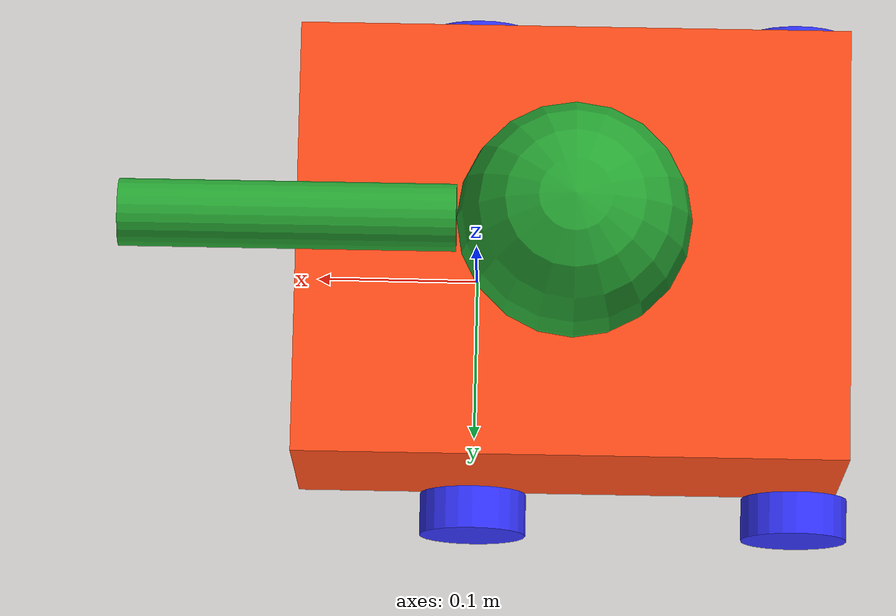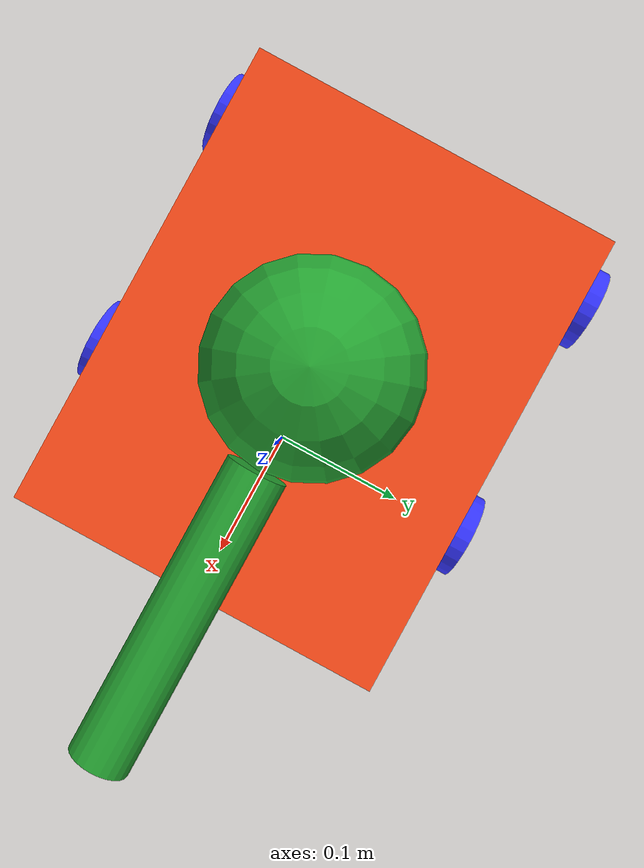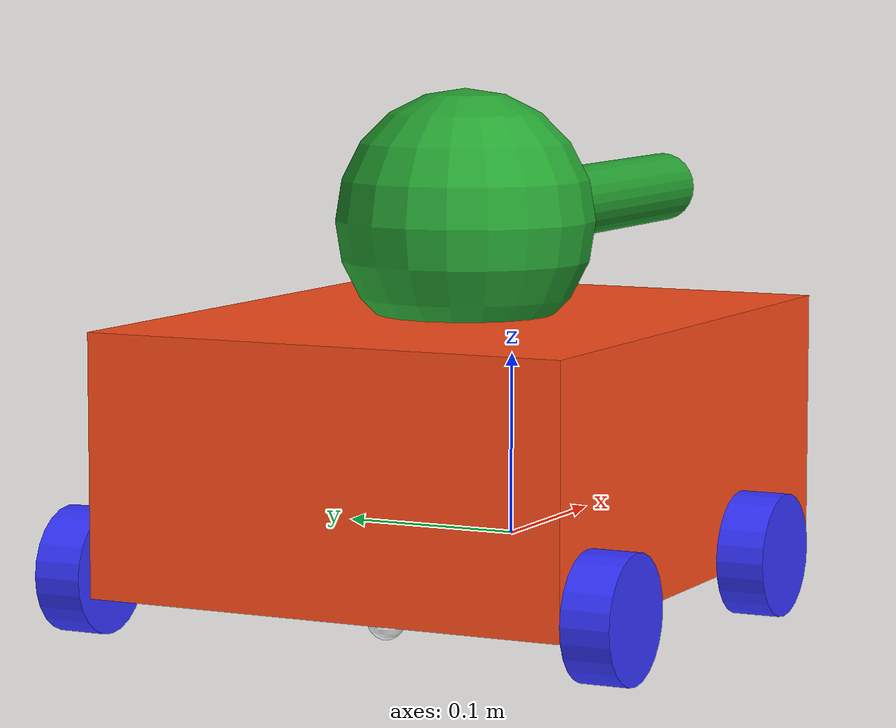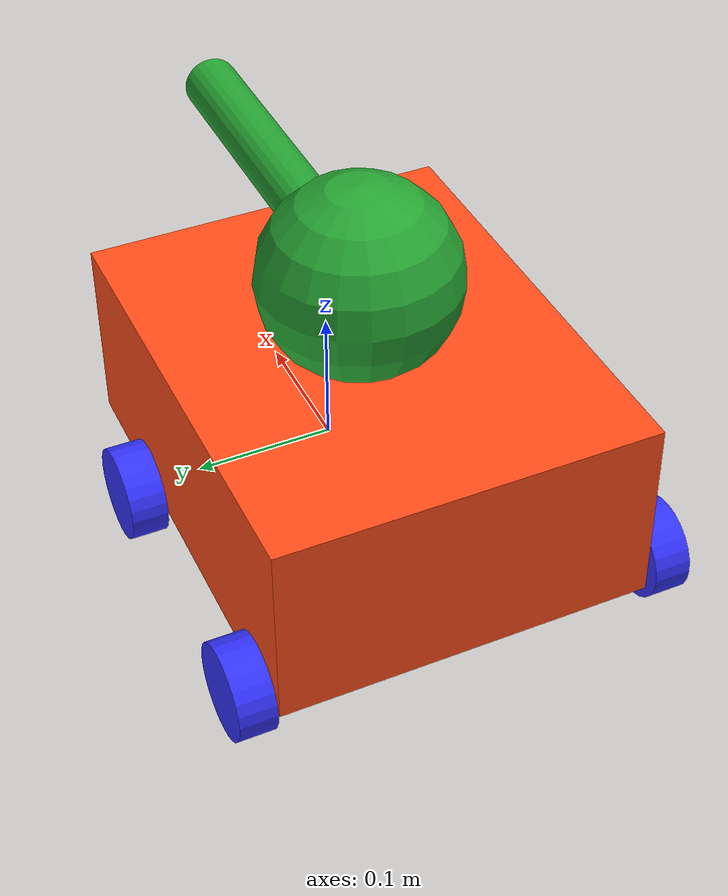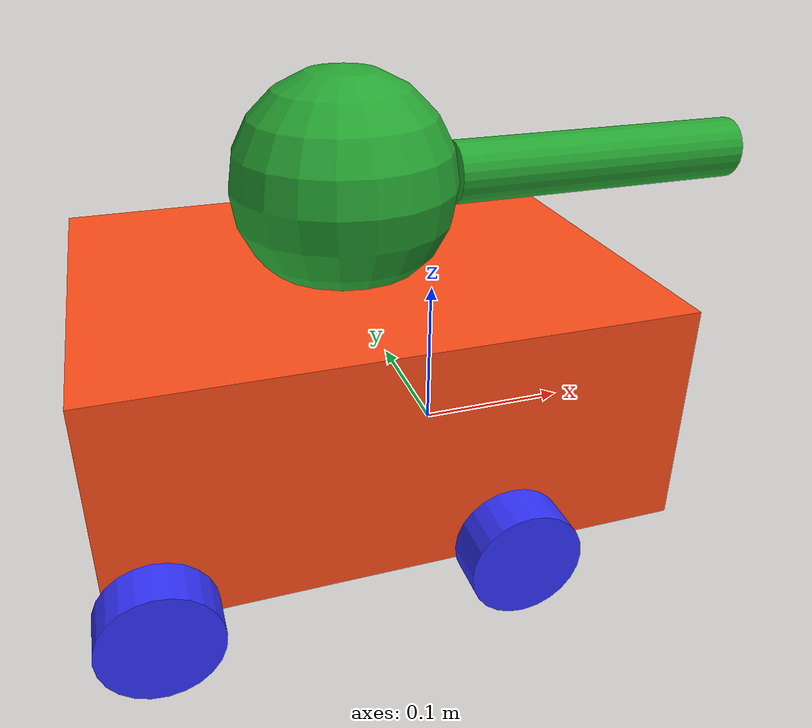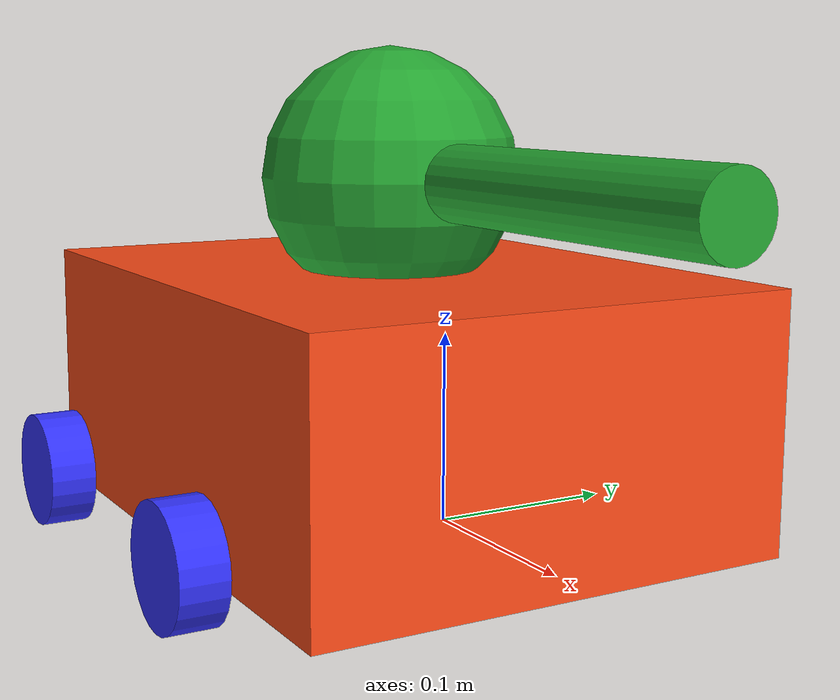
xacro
<?xml version="1.0" ?>
<robot name='robot' xmlns:xacro="http://ros.org/wiki/xacro">

    <xacro:include filename="gazebo.urdf.xacro" />
    <!--xacro:include filename="$(find robot_description)/urdf/lidar.urdf.xacro" /-->
    <!--xacro:include filename="$(find robot_description)/urdf/depth.urdf.xacro" /-->

    <xacro:property name="chassis_length" value="0.335"/>
    <xacro:property name="chassis_width" value="0.265"/>
    <xacro:property name="chassis_height" value="0.138"/>
    <xacro:property name="wheel_radius" value="0.033"/>
    <xacro:property name="wheel_thickness" value="0.026"/>
    <xacro:property name="wheel_mass" value="0.05"/>
    <xacro:property name="wheel_offset_x" value="0.226"/>
    <xacro:property name="wheel_offset_y" value="0.1485"/>
    <xacro:property name="wheel_offset_z" value="0.01"/>
    <xacro:property name="caster_wheel_radius" value="0.01"/>
    <xacro:property name="caster_wheel_mass" value="0.01"/>
    <xacro:property name="caster_wheel_offset_x" value="0.075"/>
    <xacro:property name="caster_wheel_offset_z" value="${wheel_offset_z - wheel_radius + caster_wheel_radius}"/>
    <xacro:property name="mass" value="1.0"/>

    <material name="white">
        <color rgba="1 1 1 1" />
    </material>

    <material name="orange">
        <color rgba="1 0.3 0.1 1"/>
    </material>

    <material name="blue">
        <color rgba="0.2 0.2 1 1"/>
    </material>

    <material name="black">
        <color rgba="0 0 0 1"/>
    </material>

    <material name="red">
        <color rgba="1 0 0 1"/>
    </material>

    <link name="base_link">
    </link>

    <link name="base_footprint">
    </link>

    <joint name="base_footprint_joint" type="fixed">
        <parent link="base_link"/>
        <child link="base_footprint"/>
        <origin xyz="0 0 -0.138" rpy="0 0 0"/>
    </joint>

    <joint name="chassis_joint" type="fixed">
        <parent link="base_link"/>
        <child link="chassis"/>
        <origin xyz="${-wheel_offset_x} 0 ${-wheel_offset_z}"/>
    </joint>

    <link name='chassis'>

    <inertial>
        <origin xyz="${chassis_length/2} 0 ${chassis_height/2}" rpy="0 0 0"/>
        <mass value="${mass}" />
        <inertia ixx="${(1/12) * mass * (chassis_width*chassis_width+chassis_height*chassis_height)}" ixy="0.0" ixz="0.0"
                 iyy="${(1/12) * mass * (chassis_length*chassis_length+chassis_height*chassis_height)}" iyz="0.0"
                 izz="${(1/12) * mass * (chassis_length*chassis_length+chassis_width*chassis_width)}" />
    </inertial>
    <visual>
        <origin xyz="${chassis_length/2} 0 ${chassis_height/2}"/>
        <geometry>
            <box size="${chassis_length} ${chassis_width} ${chassis_height}"/>
        </geometry>
        <material name="orange"/>
    </visual>
    <collision>
        <origin xyz="${chassis_length/2} 0 ${chassis_height/2}"/>
        <geometry>
            <box size="${chassis_length} ${chassis_width} ${chassis_height}"/>
        </geometry>
    </collision>
    </link>

    <joint name="pyramid" type="fixed">
        <parent link="chassis"/>
        <child link="pyram"/>
        <origin xyz="${chassis_length/2} 0 ${chassis_height+0.05}"/>
    </joint>

    <link name="pyram">
        <visual>
            <geometry>
                <sphere radius="0.07"/>
            </geometry>
            <material name="green"/>
        </visual>
        <collision>
            <geometry>
                <sphere radius="0.07"/>
            </geometry>
        </collision>
    </link>

    <joint name="pyramid_2" type="fixed">
        <parent link="pyram"/>
        <child link="pyram_2"/>
        <origin xyz="0.17 0 0" rpy="0 ${pi/2} 0"/>
    </joint>

    <link name="pyram_2">
        <visual>
            <geometry>
                <cylinder radius="0.02" length="0.2"/>
            </geometry>
            <material name="green"/>
        </visual>
        <collision>
            <geometry>
                <cylinder radius="0.05" length="0.2"/>
            </geometry>
        </collision>
    </link>

    <gazebo reference="chassis">
        <material>Gazebo/Orange</material>
    </gazebo>

    <joint name="left_wheel_joint_back" type="continuous">
        <parent link="base_link"/>
        <child link="left_wheel_back"/>
        <origin xyz="-0.2 ${wheel_offset_y} 0" rpy="-${pi/2} 0 0" />
        <axis xyz="0 0 1"/>
    </joint>

    <link name="left_wheel_back">
        <visual>
            <geometry>
                <cylinder radius="${wheel_radius}" length="${wheel_thickness}"/>
            </geometry>
            <material name="blue"/>
        </visual>
        <collision>
            <geometry>
                <sphere radius="${wheel_radius}"/>
            </geometry>
        </collision>
        <inertial>
            <origin xyz="0 0 0" rpy="0 0 0"/>
            <mass value="${wheel_mass}" />
            <inertia ixx="${(1/12) * wheel_mass * (3*wheel_radius*wheel_radius + wheel_thickness*wheel_thickness)}" ixy="0.0" ixz="0.0"
                     iyy="${(1/12) * wheel_mass * (3*wheel_radius*wheel_radius + wheel_thickness*wheel_thickness)}" iyz="0.0"
                     izz="${(1/2) * wheel_mass * (wheel_radius*wheel_radius)}" />
        </inertial>
    </link>

    <gazebo reference="left_wheel_back">
        <material>Gazebo/Blue</material>
    </gazebo>

    <joint name="left_wheel_joint" type="continuous">
        <parent link="base_link"/>
        <child link="left_wheel"/>
        <origin xyz="0 ${wheel_offset_y} 0" rpy="-${pi/2} 0 0" />
        <axis xyz="0 0 1"/>
    </joint>

    <link name="left_wheel">
        <visual>
            <geometry>
                <cylinder radius="${wheel_radius}" length="${wheel_thickness}"/>
            </geometry>
            <material name="blue"/>
        </visual>
        <collision>
            <geometry>
                <sphere radius="${wheel_radius}"/>
            </geometry>
        </collision>
        <inertial>
            <origin xyz="0 0 0" rpy="0 0 0"/>
            <mass value="${wheel_mass}" />
            <inertia ixx="${(1/12) * wheel_mass * (3*wheel_radius*wheel_radius + wheel_thickness*wheel_thickness)}" ixy="0.0" ixz="0.0"
                     iyy="${(1/12) * wheel_mass * (3*wheel_radius*wheel_radius + wheel_thickness*wheel_thickness)}" iyz="0.0"
                     izz="${(1/2) * wheel_mass * (wheel_radius*wheel_radius)}" />
        </inertial>
    </link>

    <gazebo reference="left_wheel">
        <material>Gazebo/Blue</material>
    </gazebo>

    <joint name="right_wheel_joint" type="continuous">
        <parent link="base_link"/>
        <child link="right_wheel"/>
        <origin xyz="0 ${-wheel_offset_y} 0" rpy="${pi/2} 0 0" />
        <axis xyz="0 0 -1"/>
    </joint>

    <link name="right_wheel">
        <visual>
            <geometry>
                <cylinder radius="${wheel_radius}" length="${wheel_thickness}"/>
            </geometry>
            <material name="blue"/>
        </visual>
        <collision>
            <geometry>
                <sphere radius="${wheel_radius}"/>
            </geometry>
        </collision>
        <inertial>
            <origin xyz="0 0 0" rpy="0 0 0"/>
            <mass value="${wheel_mass}" />
            <inertia ixx="${(1/12) * wheel_mass * (3*wheel_radius*wheel_radius + wheel_thickness*wheel_thickness)}" ixy="0.0" ixz="0.0"
                     iyy="${(1/12) * wheel_mass * (3*wheel_radius*wheel_radius + wheel_thickness*wheel_thickness)}" iyz="0.0"
                     izz="${(1/2) * wheel_mass * (wheel_radius*wheel_radius)}" />
        </inertial>
    </link>

    <gazebo reference="right_wheel">
        <material>Gazebo/Blue</material>
    </gazebo>

    <joint name="right_wheel_joint_back" type="continuous">
        <parent link="base_link"/>
        <child link="right_wheel_back"/>
        <origin xyz="-0.2 ${-wheel_offset_y} 0" rpy="${pi/2} 0 0" />
        <axis xyz="0 0 -1"/>
    </joint>

    <link name="right_wheel_back">
        <visual>
            <geometry>
                <cylinder radius="${wheel_radius}" length="${wheel_thickness}"/>
            </geometry>
            <material name="blue"/>
        </visual>
        <collision>
            <geometry>
                <sphere radius="${wheel_radius}"/>
            </geometry>
        </collision>
        <inertial>
            <origin xyz="0 0 0" rpy="0 0 0"/>
            <mass value="${wheel_mass}" />
            <inertia ixx="${(1/12) * wheel_mass * (3*wheel_radius*wheel_radius + wheel_thickness*wheel_thickness)}" ixy="0.0" ixz="0.0"
                     iyy="${(1/12) * wheel_mass * (3*wheel_radius*wheel_radius + wheel_thickness*wheel_thickness)}" iyz="0.0"
                     izz="${(1/2) * wheel_mass * (wheel_radius*wheel_radius)}" />
        </inertial>
    </link>

    <gazebo reference="right_wheel_back">
        <material>Gazebo/Blue</material>
    </gazebo>

    <joint name="caster_wheel_joint" type="fixed">
        <parent link="chassis"/>
        <child link="caster_wheel"/>
        <origin xyz="${caster_wheel_offset_x} 0 ${caster_wheel_offset_z}"/>
    </joint>

    <link name="caster_wheel">
        <visual>
            <geometry>
                <sphere radius="${caster_wheel_radius}"/>
            </geometry>
            <material name="white"/>
        </visual>
        <collision>
            <geometry>
                <sphere radius="${caster_wheel_radius}"/>
            </geometry>
        </collision>
        <inertial>
            <origin xyz="0 0 0" rpy="0 0 0"/>
            <mass value="${caster_wheel_mass}" />
            <inertia ixx="${(2/5) * caster_wheel_mass * (caster_wheel_radius*caster_wheel_radius)}" ixy="0.0" ixz="0.0"
                     iyy="${(2/5) * caster_wheel_mass * (caster_wheel_radius*caster_wheel_radius)}" iyz="0.0"
                     izz="${(2/5) * caster_wheel_mass * (caster_wheel_radius*caster_wheel_radius)}" />
        </inertial>
    </link>

    <gazebo reference="caster_wheel">
        <material>Gazebo/White</material>
        <mu1 value="0.001"/>
        <mu2 value="0.001"/>
    </gazebo>

</robot>
